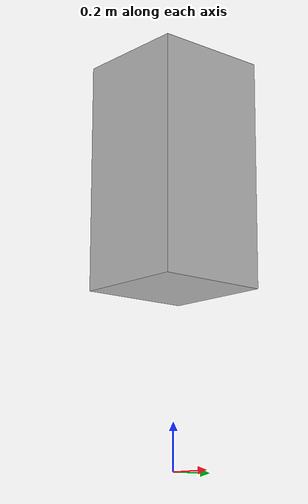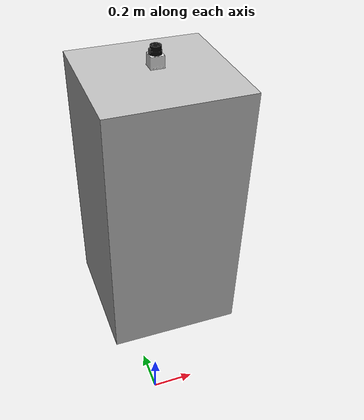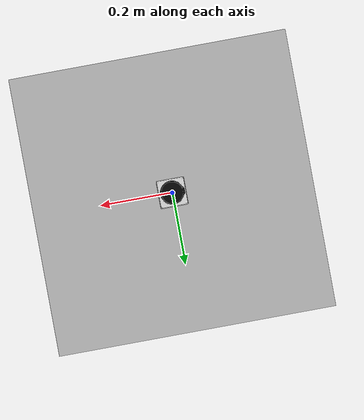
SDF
<?xml version='1.0'?>
<sdf version='1.6'>
  <model name='magic_laser_box'>
    <link name='base_footprint'>
      <pose frame=''>0 0 0 0 -0 0</pose>
      <inertial>
        <pose frame=''>0 0 0 0 -0 0</pose>
        <mass>50</mass>
        <inertia>
          <ixx>50</ixx>
          <ixy>0</ixy>
          <ixz>0</ixz>
          <iyy>50</iyy>
          <iyz>0</iyz>
          <izz>50</izz>
        </inertia>
      </inertial>
      <self_collide>0</self_collide>
      <kinematic>0</kinematic>
      <visual name='base_footprint_visual'>
        <pose frame=''>0 0 0 0 -0 0</pose>
        <geometry>
          <box>
            <size>0.001 0.001 0.001</size>
          </box>
        </geometry>
        <cast_shadows>1</cast_shadows>
        <transparency>0</transparency>
        <material>
          <emissive>0 0 0 1</emissive>
        </material>
      </visual>
      <visual name='base_footprint_fixed_joint_lump__base_link_visual_1'>
        <pose frame=''>0 0 1.25 0 -0 0</pose>
        <geometry>
          <box>
            <size>0.5 0.5 1</size>
          </box>
        </geometry>
        <cast_shadows>1</cast_shadows>
        <transparency>0</transparency>
        <material>
          <emissive>0 0 0 1</emissive>
        </material>
      </visual>
      <collision name='base_footprint_fixed_joint_lump__base_link_collision'>
        <laser_retro>0</laser_retro>
        <max_contacts>10</max_contacts>
        <pose frame=''>0 0 0.25 0 -0 0</pose>
        <geometry>
          <cylinder>
            <radius>0.25</radius>
            <length>0.5</length>
          </cylinder>
        </geometry>
        <surface>
          <friction>
            <ode>
              <mu>1</mu>
              <mu2>1</mu2>
              <fdir1>0 0 0</fdir1>
              <slip1>0</slip1>
              <slip2>0</slip2>
            </ode>
            <torsional>
              <coefficient>1</coefficient>
              <patch_radius>0</patch_radius>
              <surface_radius>0</surface_radius>
              <use_patch_radius>1</use_patch_radius>
              <ode>
                <slip>0</slip>
              </ode>
            </torsional>
          </friction>
          <bounce>
            <restitution_coefficient>0</restitution_coefficient>
            <threshold>1e+06</threshold>
          </bounce>
          <contact>
            <collide_without_contact>0</collide_without_contact>
            <collide_without_contact_bitmask>1</collide_without_contact_bitmask>
            <collide_bitmask>1</collide_bitmask>
            <ode>
              <soft_cfm>0</soft_cfm>
              <soft_erp>0.2</soft_erp>
              <kp>1e+13</kp>
              <kd>1</kd>
              <max_vel>0.01</max_vel>
              <min_depth>0</min_depth>
            </ode>
            <bullet>
              <split_impulse>1</split_impulse>
              <split_impulse_penetration_threshold>-0.01</split_impulse_penetration_threshold>
              <soft_cfm>0</soft_cfm>
              <soft_erp>0.2</soft_erp>
              <kp>1e+13</kp>
              <kd>1</kd>
            </bullet>
          </contact>
        </surface>
      </collision>
    </link>
    <model name='hokuyo'>
      <link name='link'>
        <gravity>0</gravity>
        <inertial>
          <mass>0.1</mass>
        </inertial>
        <visual name='visual'>
          <geometry>
            <mesh>
              <uri>model://hokuyo/meshes/hokuyo.dae</uri>
            </mesh>
          </geometry>
        </visual>
        <sensor name='head_hokuyo_sensor' type='ray'>
          <pose frame=''>0.01 0 0.03 0 -0 0</pose>
          <ray>
            <scan>
              <horizontal>
                <samples>640</samples>
                <resolution>1</resolution>
                <min_angle>-2.26889</min_angle>
                <max_angle>2.2689</max_angle>
              </horizontal>
            </scan>
            <range>
              <min>0.08</min>
              <max>10</max>
              <resolution>0.01</resolution>
            </range>
          </ray>
          <plugin name='laser' filename='libgazebo_ros_laser.so'>
          	<topicName>scan</topicName>
        	<frameName>laser</frameName>
          </plugin>
          <always_on>1</always_on>
          <update_rate>30</update_rate>
          <visualize>1</visualize>
        </sensor>
      </link>
      <pose frame=''>0 0 1.8001 0 -0 0</pose>
    </model>
    <joint name='link_JOINT_0' type='fixed'>
      <parent>hokuyo::link</parent>
      <child>base_footprint</child>
      <pose frame=''>0 0 0 0 -0 0</pose>
      <physics>
        <ode>
          <limit>
            <cfm>0</cfm>
            <erp>0.2</erp>
          </limit>
          <suspension>
            <cfm>0</cfm>
            <erp>0.2</erp>
          </suspension>
        </ode>
      </physics>
    </joint>
    <static>0</static>
    <allow_auto_disable>1</allow_auto_disable>
    <plugin name='object_controller' filename='libgazebo_ros_planar_move.so'>
      <commandTopic>cmd_vel</commandTopic>
      <odometryTopic>odom</odometryTopic>
      <odometryFrame>odom</odometryFrame>
      <odometryRate>20.0</odometryRate>
      <robotBaseFrame>base_footprint</robotBaseFrame>
      <robotNamespace>/</robotNamespace>
    </plugin>
  </model>
</sdf>
